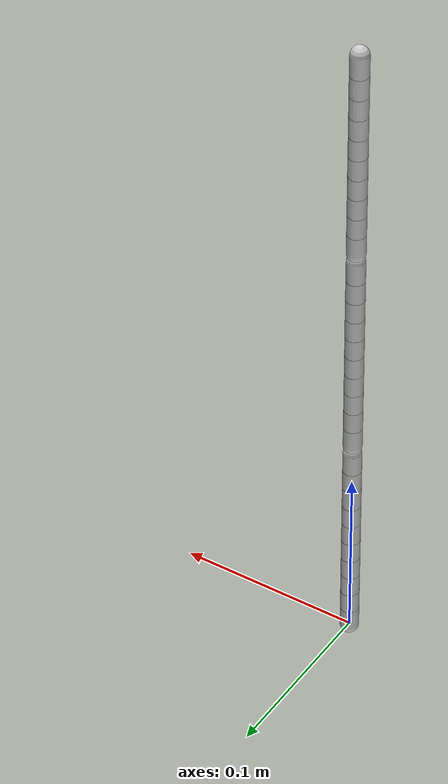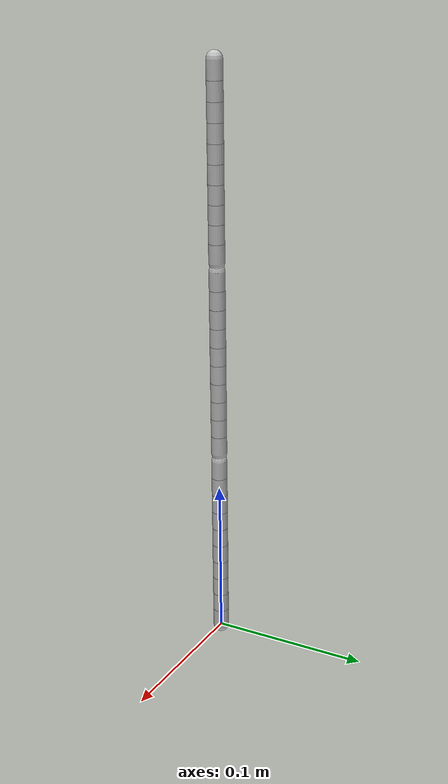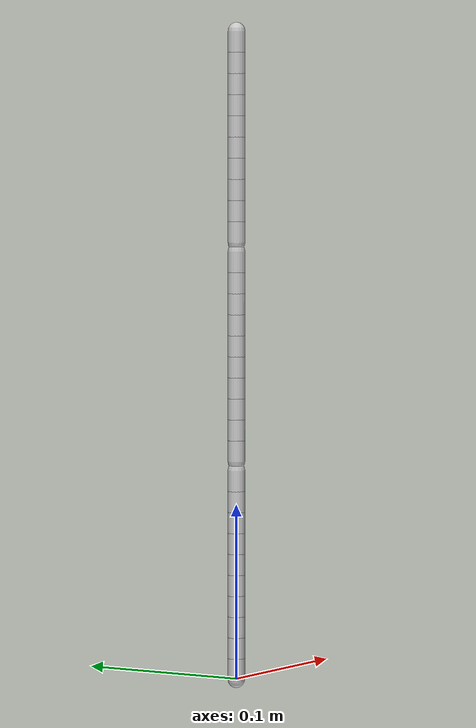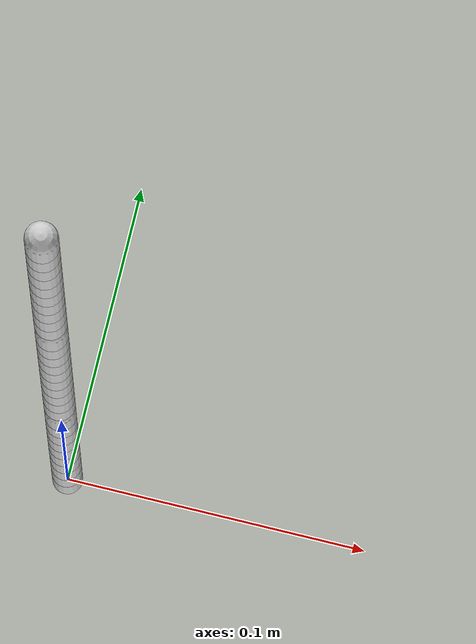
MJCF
<?xml version="1.0"?>
<mujoco model="continuum_sers_core">
  <compiler angle="degree" coordinate="local"/>
  <option integrator="Euler" timestep="0.001"/>

    <default>
        <!-- 회전 스프링/댐핑: 모든 힌지에 적용 -->
        <!-- stiffness 단위: N·m/rad, damping: N·m·s/rad -->
        <joint limited="true" range="-4 4"
                stiffness="0.04" damping="0.005" armature="0.0001"/>
        <geom type="capsule" size="0.005" density="1000"
                friction="0.8 0.1 0.01" rgba="0.8 0.8 0.8 1"/>
    </default>
  <worldbody>
    <body name="base" pos="0 0 0">
      <!-- ================= SEGMENT 1 ================= -->
      <body name="seg1_base" pos="0 0 0.000">
        <body name="seg1_v1" pos="0 0 0">
          <geom name="seg1_v1_geom" fromto="0 0 0  0 0 0.012"/>
          <joint name="seg1_j1_pitch" type="hinge" axis="1 0 0"/>
            <joint name="seg1_j1_yaw" type="hinge" axis="0 1 0"/>
          <body name="seg1_v2" pos="0 0 0.012">
            <geom name="seg1_v2_geom" fromto="0 0 0  0 0 0.012" />
            <joint name="seg1_j2_yaw" type="hinge" axis="0 1 0"/>

            <body name="seg1_v3" pos="0 0 0.012">
              <geom name="seg1_v3_geom" fromto="0 0 0  0 0 0.012" />
              <joint name="seg1_j3_pitch" type="hinge" axis="1 0 0"/>

              <body name="seg1_v4" pos="0 0 0.012">
                <geom name="seg1_v4_geom" fromto="0 0 0  0 0 0.012" />
                <joint name="seg1_j4_yaw" type="hinge" axis="0 1 0"/>

                <body name="seg1_v5" pos="0 0 0.012">
                  <geom name="seg1_v5_geom" fromto="0 0 0  0 0 0.012" />
                  <joint name="seg1_j5_pitch" type="hinge" axis="1 0 0"/>

                  <body name="seg1_v6" pos="0 0 0.012">
                    <geom name="seg1_v6_geom" fromto="0 0 0  0 0 0.012" />
                    <joint name="seg1_j6_yaw" type="hinge" axis="0 1 0"/>

                    <body name="seg1_v7" pos="0 0 0.012">
                      <geom name="seg1_v7_geom" fromto="0 0 0  0 0 0.012" />
                      <joint name="seg1_j7_pitch" type="hinge" axis="1 0 0"/>

                      <body name="seg1_v8" pos="0 0 0.012">
                        <geom name="seg1_v8_geom" fromto="0 0 0  0 0 0.012"/>
                        <joint name="seg1_j8_yaw" type="hinge" axis="0 1 0"/>

                        <body name="seg1_v9" pos="0 0 0.012">
                          <geom name="seg1_v9_geom" fromto="0 0 0  0 0 0.012" />
                          <body name="seg1_v10" pos="0 0 0.012">
                            <geom name="seg1_v10_geom" fromto="0 0 0  0 0 0.012" />

                            <!-- ================= SEGMENT 2 ================= -->
                            <body name="seg2_base" pos="0 0 0.005">
                              <body name="seg2_v1" pos="0 0 0.012">
                                <geom name="seg2_v1_geom" fromto="0 0 0  0 0 0.012"/>
                                <joint name="seg2_j1_pitch" type="hinge" axis="1 0 0"/>

                                <body name="seg2_v2" pos="0 0 0.012">
                                  <geom name="seg2_v2_geom" fromto="0 0 0  0 0 0.012"/>
                                  <joint name="seg2_j2_yaw" type="hinge" axis="0 1 0"/>

                                  <body name="seg2_v3" pos="0 0 0.012">
                                    <geom name="seg2_v3_geom" fromto="0 0 0  0 0 0.012"/>
                                    <joint name="seg2_j3_pitch" type="hinge" axis="1 0 0"/>

                                    <body name="seg2_v4" pos="0 0 0.012">
                                      <geom name="seg2_v4_geom" fromto="0 0 0  0 0 0.012"/>
                                      <joint name="seg2_j4_yaw" type="hinge" axis="0 1 0"/>

                                      <body name="seg2_v5" pos="0 0 0.012">
                                        <geom name="seg2_v5_geom" fromto="0 0 0  0 0 0.012"/>
                                        <joint name="seg2_j5_pitch" type="hinge" axis="1 0 0"/>

                                        <body name="seg2_v6" pos="0 0 0.012">
                                          <geom name="seg2_v6_geom" fromto="0 0 0  0 0 0.012"/>
                                          <joint name="seg2_j6_yaw" type="hinge" axis="0 1 0"/>

                                          <body name="seg2_v7" pos="0 0 0.012">
                                            <geom name="seg2_v7_geom" fromto="0 0 0  0 0 0.012"/>
                                            <joint name="seg2_j7_pitch" type="hinge" axis="1 0 0"/>

                                            <body name="seg2_v8" pos="0 0 0.012">
                                              <geom name="seg2_v8_geom" fromto="0 0 0  0 0 0.012"/>
                                              <joint name="seg2_j8_yaw" type="hinge" axis="0 1 0"/>

                                              <body name="seg2_v9" pos="0 0 0.012">
                                                <geom name="seg2_v9_geom" fromto="0 0 0  0 0 0.012"/>
                                                <body name="seg2_v10" pos="0 0 0.012">
                                                  <geom name="seg2_v10_geom" fromto="0 0 0  0 0 0.012"/>

                                                  <!-- ================= SEGMENT 3 ================= -->
                                                  <body name="seg3_base" pos="0 0 0.005">
                                                    <body name="seg3_v1" pos="0 0 0.012">
                                                      <geom name="seg3_v1_geom" fromto="0 0 0  0 0 0.012"/>
                                                      <joint name="seg3_j1_pitch" type="hinge" axis="1 0 0"/>

                                                      <body name="seg3_v2" pos="0 0 0.012">
                                                        <geom name="seg3_v2_geom" fromto="0 0 0  0 0 0.012"/>
                                                        <joint name="seg3_j2_yaw" type="hinge" axis="0 1 0"/>

                                                        <body name="seg3_v3" pos="0 0 0.012">
                                                          <geom name="seg3_v3_geom" fromto="0 0 0  0 0 0.012"/>
                                                          <joint name="seg3_j3_pitch" type="hinge" axis="1 0 0"/>

                                                          <body name="seg3_v4" pos="0 0 0.012">
                                                            <geom name="seg3_v4_geom" fromto="0 0 0  0 0 0.012"/>
                                                            <joint name="seg3_j4_yaw" type="hinge" axis="0 1 0"/>

                                                            <body name="seg3_v5" pos="0 0 0.012">
                                                              <geom name="seg3_v5_geom" fromto="0 0 0  0 0 0.012"/>
                                                              <joint name="seg3_j5_pitch" type="hinge" axis="1 0 0"/>

                                                              <body name="seg3_v6" pos="0 0 0.012">
                                                                <geom name="seg3_v6_geom" fromto="0 0 0  0 0 0.012"/>
                                                                <joint name="seg3_j6_yaw" type="hinge" axis="0 1 0"/>

                                                                <body name="seg3_v7" pos="0 0 0.012">
                                                                  <geom name="seg3_v7_geom" fromto="0 0 0  0 0 0.012"/>
                                                                  <joint name="seg3_j7_pitch" type="hinge" axis="1 0 0"/>

                                                                  <body name="seg3_v8" pos="0 0 0.012">
                                                                    <geom name="seg3_v8_geom" fromto="0 0 0  0 0 0.012"/>
                                                                    <joint name="seg3_j8_yaw" type="hinge" axis="0 1 0"/>

                                                                    <body name="seg3_v9" pos="0 0 0.012">
                                                                      <geom name="seg3_v9_geom" fromto="0 0 0  0 0 0.012"/>
                                                                      <body name="seg3_v10" pos="0 0 0.012">
                                                                        <geom name="seg3_v10_geom" fromto="0 0 0  0 0 0.012"/>
                                                                      </body>
                                                                    </body>
                                                                  </body>
                                                                </body>
                                                              </body>
                                                            </body>
                                                          </body>
                                                        </body>
                                                      </body>
                                                    </body>
                                                  </body>

                                                </body>
                                              </body>
                                            </body>
                                          </body>
                                        </body>
                                      </body>
                                    </body>
                                  </body>
                                </body>
                              </body>

                            </body>
                          </body>
                        </body>

                      </body>
                    </body>
                  </body>
                </body>
              </body>
            </body>
          </body>
        </body>
      </body>
    </body>
  </worldbody>
  <actuator>
    <position name="u_seg1_j1" joint="seg1_j1_pitch" kp="200" ctrlrange="-0.5 0.5"/>
    <position name="u_seg1_j2" joint="seg1_j2_yaw"   kp="200" ctrlrange="-0.5 0.5"/>

    <position name="u_seg2_j1" joint="seg2_j1_pitch" kp="200" ctrlrange="-0.5 0.5"/>
    <position name="u_seg2_j2" joint="seg2_j2_yaw"   kp="200" ctrlrange="-0.5 0.5"/>

    <position name="u_seg3_j1" joint="seg3_j1_pitch" kp="200" ctrlrange="-0.5 0.5"/>
    <position name="u_seg3_j2" joint="seg3_j2_yaw"   kp="200" ctrlrange="-0.5 0.5"/>
</actuator>
</mujoco>
